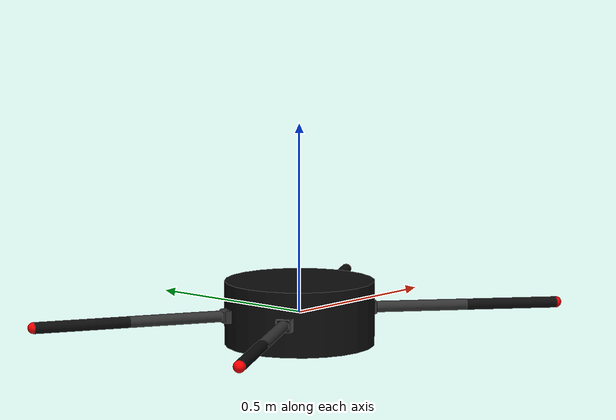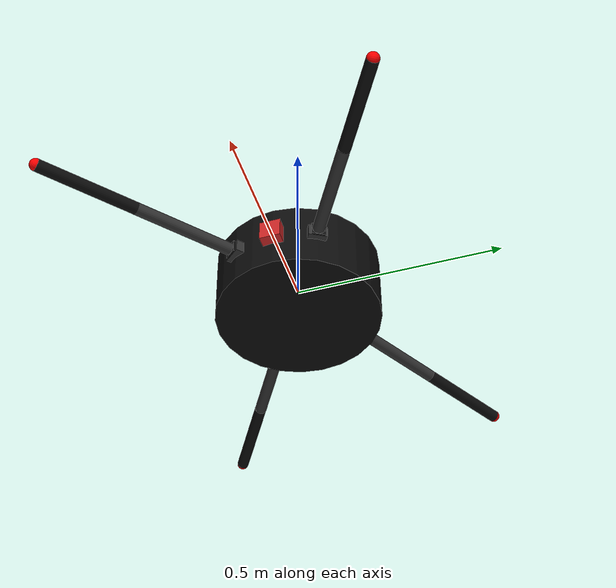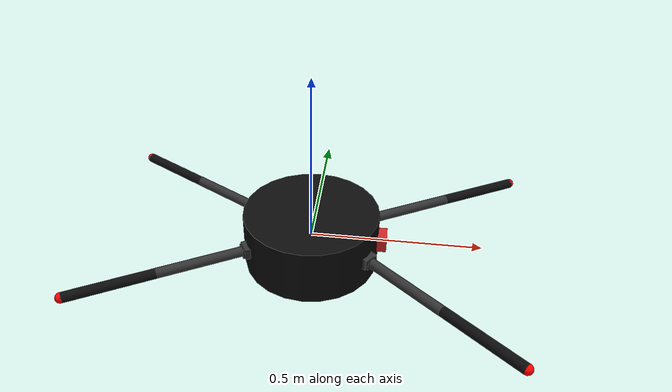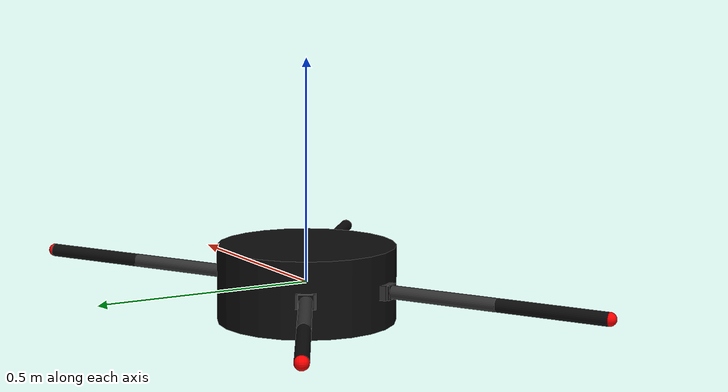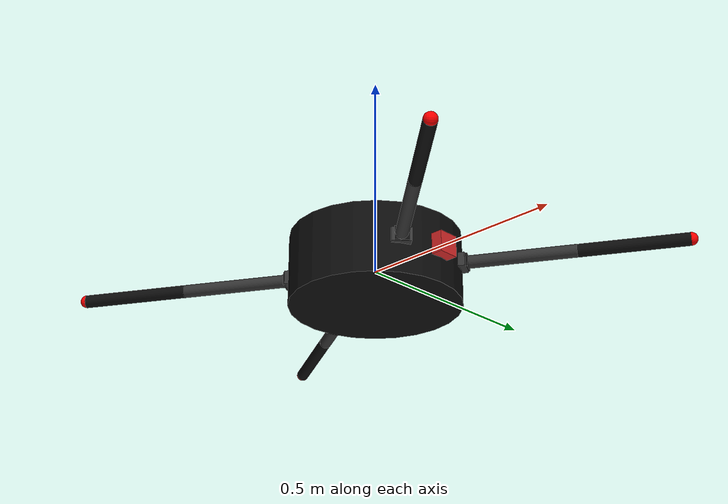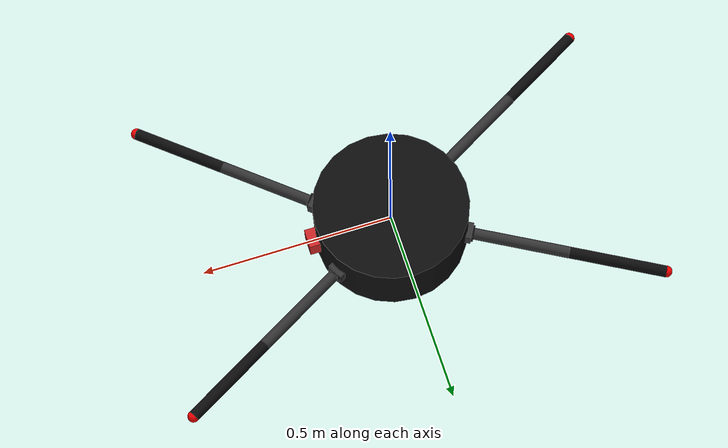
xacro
<?xml version="1.0" encoding="utf-8"?>
<!-- |    This document was autogenerated by xacro from ardent_quad.xacro              | -->
<!-- |    EDITING THIS FILE BY HAND IS NOT RECOMMENDED                                 | -->
<robot name="ardent" xmlns:xacro="http://www.ros.org/wiki/xacro">
  <!-- Link-->
  <joint name="camera_joint" type="fixed">
    <axis xyz="0 1 0"/>
    <origin rpy="0 0 0" xyz="0.2 0 0"/>
    <parent link="body"/>
    <child link="camera_link"/>
  </joint>
  <!-- Camera -->
  <link name="camera_link">
    <collision>
      <origin rpy="0 0 0" xyz="0 0 0"/>
      <geometry>
        <box size="0.05 0.05 0.05"/>
      </geometry>
    </collision>
    <visual>
      <origin rpy="0 0 0" xyz="0 0 0"/>
      <geometry>
        <box size="0.05 0.05 0.05"/>
      </geometry>
      <material name="red"/>
    </visual>
    <inertial>
      <mass value="1e-5"/>
      <origin rpy="0 0 0" xyz="0 0 0"/>
      <inertia ixx="1e-6" ixy="0" ixz="0" iyy="1e-6" iyz="0" izz="1e-6"/>
    </inertial>
  </link>
  <!-- generate an optical frame http://www.ros.org/reps/rep-0103.html#suffix-frames
        so that ros and opencv can operate on the camera frame correctly -->
  <joint name="camera_optical_joint" type="fixed">
    <!-- these values have to be these values otherwise the gazebo camera image
            won't be aligned properly with the frame it is supposedly originating from -->
    <origin rpy="-1.57079632679 0 -1.57079632679" xyz="0 0 0"/>
    <parent link="camera_link"/>
    <child link="camera_link_optical"/>
  </joint>
  <link name="camera_link_optical">
    </link>
  <!-- camera -->
  <gazebo reference="camera_link">
    <sensor name="camera1" type="camera">
      <update_rate>30.0</update_rate>
      <camera name="head">
        <horizontal_fov>1.3962634</horizontal_fov>
        <image>
          <width>800</width>
          <height>800</height>
          <format>R8G8B8</format>
        </image>
        <clip>
          <near>0.02</near>
          <far>300</far>
        </clip>
        <noise>
          <type>gaussian</type>
          <!-- Noise is sampled independently per pixel on each frame.
                That pixel's noise value is added to each of its color
                channels, which at that point lie in the range [0,1]. -->
          <mean>0.0</mean>
          <stddev>0.007</stddev>
        </noise>
      </camera>
      <!-- Depth Plugin -->
      <plugin filename="libgazebo_ros_camera.so" name="camera_controller">
        <alwaysOn>true</alwaysOn>
        <updateRate>0.0</updateRate>
        <cameraName>rrbot/camera1</cameraName>
        <imageTopicName>image_raw</imageTopicName>
        <cameraInfoTopicName>camera_info</cameraInfoTopicName>
        <frameName>camera_link_optical</frameName>
        <!-- setting hackBaseline to anything but 0.0 will cause a misalignment
                between the gazebo sensor image and the frame it is supposed to
                be attached to -->
        <hackBaseline>0.0</hackBaseline>
        <distortionK1>0.0</distortionK1>
        <distortionK2>0.0</distortionK2>
        <distortionK3>0.0</distortionK3>
        <distortionT1>0.0</distortionT1>
        <distortionT2>0.0</distortionT2>
        <CxPrime>0</CxPrime>
        <Cx>0.0</Cx>
        <Cy>0.0</Cy>
        <focalLength>0.0</focalLength>
      </plugin>
    </sensor>
  </gazebo>
  <!-- for more info visit: http://wiki.ros.org/urdf/Tutorials -->
  <link name="base_link"/>
  <joint name="j_ardent_attachment" type="fixed">
    <parent link="base_link"/>
    <child link="body"/>
    <origin rpy="0 0 0" xyz="0 0 0"/>
  </joint>
  <link name="body">
    <inertial>
      <origin xyz="0 0 0"/>
      <mass value="6.8"/>
      <inertia ixx="3.1081800" ixy="-0.25460189" ixz="2.0318174" iyy="6.3787776" iyz="0.16417863" izz="5.3316425"/>
    </inertial>
    <visual>
      <!--origin xyz="-0.0235 0 -0.03525" rpy="0 0 0" /-->
      <origin rpy="0 0 0" xyz="0 0 0"/>
      <geometry>
        <cylinder length="0.17" radius="0.2"/>
        <!--box size="0.102 0.109 0.106" /-->
      </geometry>
      <material name="Orange">
        <color rgba="12 12 12 1.0"/>
      </material>
    </visual>
    <collision>
      <origin rpy="0 0 0" xyz="0 0 0"/>
      <geometry>
        <cylinder length="0.17" radius="0.2"/>
      </geometry>
    </collision>
  </link>
  <gazebo>
    <plugin filename="libgazebo_ros_p3d.so" name="p3d_base_controller">
      <alwaysOn>true</alwaysOn>
      <updateRate>50.0</updateRate>
      <bodyName>body</bodyName>
      <topicName>odom</topicName>
      <gaussianNoise>0.01</gaussianNoise>
      <frameNamespace>world</frameNamespace>
      <xyzOffsets> 0 0 0 </xyzOffsets>
      <rpyOffsets>0 0 0 </rpyOffsets>
    </plugin>
  </gazebo>
  <plugin filename="libgazebo_ros_imu.so" name="gazebo_ros_imu_plugin">
    <alwaysOn>true</alwaysOn>
    <bodyName>body</bodyName>
    <topicName>imu/data</topicName>
    <serviceName>imu/service</serviceName>
    <gaussianNoise>0.0</gaussianNoise>
    <updateRate>800.0</updateRate>
  </plugin>
  <link name="coxa_1">
    <inertial>
      <origin rpy="0 0 0" xyz="0 0 0"/>
      <mass value="0.024357719"/>
      <inertia ixx="0.0051411124" ixy="-0.00057530255" ixz="-0.000024729049" iyy="0.0081915737" iyz="-0.000019223094" izz="0.0011379812"/>
    </inertial>
    <visual>
      <origin rpy="0 0 0" xyz="0 0 0"/>
      <geometry>
        <box size="0.022 0.045 0.0325"/>
      </geometry>
      <material name="Grey">
        <color rgba="0.20 0.20 0.20 1.0"/>
      </material>
    </visual>
    <collision>
      <origin rpy="0 0 0" xyz="0 0 0"/>
      <geometry>
        <box size="0.022 0.045 0.0325"/>
      </geometry>
    </collision>
  </link>
  <link name="c2_1">
    <inertial>
      <origin rpy="0 0 0" xyz="0 0 0"/>
      <mass value="0.024357719"/>
      <inertia ixx="0.0051411124" ixy="-0.00057530255" ixz="-0.000024729049" iyy="0.0081915737" iyz="-0.000019223094" izz="0.0011379812"/>
    </inertial>
    <visual>
      <origin rpy="0 0 0" xyz="0 0 0"/>
      <geometry>
        <box size="0.005 0.0325 0.0325"/>
      </geometry>
      <material name="Orange">
        <color rgba="12 12 12 1.0"/>
      </material>
    </visual>
    <collision>
      <origin rpy="0 0 0" xyz="0 0 0"/>
      <geometry>
        <box size="0.005 0.0325 0.0325"/>
      </geometry>
    </collision>
  </link>
  <link name="femur_1">
    <inertial>
      <origin rpy="0 0 0" xyz="1 0 0"/>
      <mass value="0.0286"/>
      <inertia ixx="0.00059" ixy="-0.0" ixz="-0.0" iyy="0.0" iyz="-0.0" izz="0.00059"/>
    </inertial>
    <visual>
      <origin rpy="0 1.57 0" xyz="0.125 0 0"/>
      <geometry>
        <cylinder length="0.25" radius="0.015"/>
      </geometry>
      <material name="Grey">
        <color rgba="0.20 0.20 0.20 1.0"/>
      </material>
    </visual>
    <collision>
      <origin rpy="0 1.57 0" xyz="0.125 0 0"/>
      <geometry>
        <cylinder length="0.25" radius="0.015"/>
      </geometry>
    </collision>
  </link>
  <link name="tibia_1">
    <inertial>
      <origin rpy="0 0 0" xyz="0 0 0"/>
      <mass value="0.0286"/>
      <!-- g/mm^2 -->
      <inertia ixx="0.00059" ixy="-0.0" ixz="-0.0" iyy="0.0" iyz="-0.0" izz="0.00059"/>
    </inertial>
    <visual>
      <origin rpy="1.57 0 1.57" xyz="0.125 0 0"/>
      <geometry>
        <cylinder length="0.25" radius="0.015"/>
      </geometry>
      <material name="Orange">
        <color rgba="12 12 12 1.0"/>
      </material>
    </visual>
    <collision>
      <origin rpy="1.57 0 1.57" xyz="0.125 0 0"/>
      <geometry>
        <cylinder length="0.25" radius="0.015"/>
      </geometry>
    </collision>
  </link>
  <link name="contact_sensor_1">
    <inertial>
      <origin rpy="0 0 0" xyz="0 0 0"/>
      <mass value="0.005"/>
      <inertia ixx="1.28e-06" ixy="-0.0" ixz="-0.0" iyy="1.28e-06" iyz="-0.0" izz="1.28e-06"/>
    </inertial>
    <visual>
      <origin rpy="0 0 0" xyz="0 0 0"/>
      <geometry>
        <sphere radius="0.015"/>
      </geometry>
      <material name="Black">
        <color rgba="1.0 0 0 0"/>
      </material>
    </visual>
    <collision>
      <origin rpy="0.0 0 0.0" xyz="0.0 0 0"/>
      <geometry>
        <sphere radius="0.015"/>
      </geometry>
    </collision>
  </link>
  <!-- Joint Definitions -->
  <joint name="j_coxa_1" type="revolute">
    <parent link="body"/>
    <child link="coxa_1"/>
    <origin rpy="0 0 5.576" xyz="0.175 -0.1  0.001116"/>
    <axis xyz="0 0 1"/>
    <limit effort="30" lower="-3.14" upper="3.14" velocity="0.5"/>
  </joint>
  <joint name="j_c2_1" type="fixed">
    <parent link="coxa_1"/>
    <child link="c2_1"/>
    <origin rpy="0 0 0" xyz="0.0135 0 0"/>
    <limit effort="30" lower="-3.14" upper="3.14" velocity="0.5"/>
  </joint>
  <joint name="j_femur_1" type="revolute">
    <parent link="c2_1"/>
    <child link="femur_1"/>
    <origin rpy=" 1.57 0 0" xyz="0 0 0"/>
    <axis xyz="0 0 1"/>
    <limit effort="30" lower="-3.14" upper="3.14" velocity="0.5"/>
  </joint>
  <joint name="j_tibia_1" type="revolute">
    <parent link="femur_1"/>
    <child link="tibia_1"/>
    <origin rpy="0 0 0" xyz="0.25 0 0"/>
    <axis xyz="0 0 1"/>
    <limit effort="30" lower="-3.14" upper="3.14" velocity="0.5"/>
  </joint>
  <joint name="j_contact_sensor_1" type="fixed">
    <parent link="tibia_1"/>
    <child link="contact_sensor_1"/>
    <origin rpy="0 0 0" xyz="0.25 0 0"/>
  </joint>
  <!-- Force/Contact Sensor -->
  <!-- This should be added later to provide the force sensor feeback to the rest of the robot -->
  <gazebo reference="contact_sensor_1">
    <sensor name="contact_sensor_1" type="contact">
      <always_on>true</always_on>
      <update_rate>30</update_rate>
      <contact>
        <collision>contact_sensor_1_link_collision</collision>
      </contact>
      <plugin filename="libgazebo_ros_bumper.so" name="bumper0_plugin">
        <bumperTopicName>leg_1/contact_sensor_state</bumperTopicName>
        <frameName>contact_sensor_1</frameName>
      </plugin>
    </sensor>
  </gazebo>
  <!-- Transmissions -->
  <transmission name="t_coxa_1">
    <type>transmission_interface/SimpleTransmission</type>
    <joint name="j_coxa_1">
      <hardwareInterface>hardware_interface/EffortJointInterface</hardwareInterface>
    </joint>
    <actuator name="j_coxa_1">
      <hardwareInterface>hardware_interface/EffortJointInterface</hardwareInterface>
      <mechanicalReduction>1</mechanicalReduction>
    </actuator>
  </transmission>
  <transmission name="t_femur_1">
    <type>transmission_interface/SimpleTransmission</type>
    <joint name="j_femur_1">
      <hardwareInterface>hardware_interface/EffortJointInterface</hardwareInterface>
    </joint>
    <actuator name="j_femur_1">
      <hardwareInterface>hardware_interface/EffortJointInterface</hardwareInterface>
      <mechanicalReduction>1</mechanicalReduction>
    </actuator>
  </transmission>
  <transmission name="t_tibia_1">
    <type>transmission_interface/SimpleTransmission</type>
    <joint name="j_tibia_1">
      <hardwareInterface>hardware_interface/EffortJointInterface</hardwareInterface>
    </joint>
    <actuator name="j_tibia_1">
      <hardwareInterface>hardware_interface/EffortJointInterface</hardwareInterface>
      <mechanicalReduction>1</mechanicalReduction>
    </actuator>
  </transmission>
  <gazebo reference="body">
    <material>Gazebo/Orange</material>
  </gazebo>
  <gazebo reference="coxa_1">
    <material>Gazebo/Black</material>
  </gazebo>
  <gazebo reference="c2_1">
    <material>Gazebo/Orange</material>
  </gazebo>
  <gazebo reference="femur_1">
    <material>Gazebo/Black</material>
  </gazebo>
  <gazebo reference="tibia_1">
    <material>Gazebo/Orange</material>
  </gazebo>
  <gazebo reference="contact_sensor_1">
    <material>Gazebo/Black</material>
  </gazebo>
  <link name="coxa_2">
    <inertial>
      <origin rpy="0 0 0" xyz="0 0 0"/>
      <mass value="0.024357719"/>
      <inertia ixx="0.0051411124" ixy="-0.00057530255" ixz="-0.000024729049" iyy="0.0081915737" iyz="-0.000019223094" izz="0.0011379812"/>
    </inertial>
    <visual>
      <origin rpy="0 0 0" xyz="0 0 0"/>
      <geometry>
        <box size="0.022 0.045 0.0325"/>
      </geometry>
      <material name="Grey">
        <color rgba="0.20 0.20 0.20 1.0"/>
      </material>
    </visual>
    <collision>
      <origin rpy="0 0 0" xyz="0 0 0"/>
      <geometry>
        <box size="0.022 0.045 0.0325"/>
      </geometry>
    </collision>
  </link>
  <link name="c2_2">
    <inertial>
      <origin rpy="0 0 0" xyz="0 0 0"/>
      <mass value="0.024357719"/>
      <inertia ixx="0.0051411124" ixy="-0.00057530255" ixz="-0.000024729049" iyy="0.0081915737" iyz="-0.000019223094" izz="0.0011379812"/>
    </inertial>
    <visual>
      <origin rpy="0 0 0" xyz="0 0 0"/>
      <geometry>
        <box size="0.005 0.0325 0.0325"/>
      </geometry>
      <material name="Orange">
        <color rgba="12 12 12 1.0"/>
      </material>
    </visual>
    <collision>
      <origin rpy="0 0 0" xyz="0 0 0"/>
      <geometry>
        <box size="0.005 0.0325 0.0325"/>
      </geometry>
    </collision>
  </link>
  <link name="femur_2">
    <inertial>
      <origin rpy="0 0 0" xyz="1 0 0"/>
      <mass value="0.0286"/>
      <inertia ixx="0.00059" ixy="-0.0" ixz="-0.0" iyy="0.0" iyz="-0.0" izz="0.00059"/>
    </inertial>
    <visual>
      <origin rpy="0 1.57 0" xyz="0.125 0 0"/>
      <geometry>
        <cylinder length="0.25" radius="0.015"/>
      </geometry>
      <material name="Grey">
        <color rgba="0.20 0.20 0.20 1.0"/>
      </material>
    </visual>
    <collision>
      <origin rpy="0 1.57 0" xyz="0.125 0 0"/>
      <geometry>
        <cylinder length="0.25" radius="0.015"/>
      </geometry>
    </collision>
  </link>
  <link name="tibia_2">
    <inertial>
      <origin rpy="0 0 0" xyz="0 0 0"/>
      <mass value="0.0286"/>
      <!-- g/mm^2 -->
      <inertia ixx="0.00059" ixy="-0.0" ixz="-0.0" iyy="0.0" iyz="-0.0" izz="0.00059"/>
    </inertial>
    <visual>
      <origin rpy="1.57 0 1.57" xyz="0.125 0 0"/>
      <geometry>
        <cylinder length="0.25" radius="0.015"/>
      </geometry>
      <material name="Orange">
        <color rgba="12 12 12 1.0"/>
      </material>
    </visual>
    <collision>
      <origin rpy="1.57 0 1.57" xyz="0.125 0 0"/>
      <geometry>
        <cylinder length="0.25" radius="0.015"/>
      </geometry>
    </collision>
  </link>
  <link name="contact_sensor_2">
    <inertial>
      <origin rpy="0 0 0" xyz="0 0 0"/>
      <mass value="0.005"/>
      <inertia ixx="1.28e-06" ixy="-0.0" ixz="-0.0" iyy="1.28e-06" iyz="-0.0" izz="1.28e-06"/>
    </inertial>
    <visual>
      <origin rpy="0 0 0" xyz="0 0 0"/>
      <geometry>
        <sphere radius="0.015"/>
      </geometry>
      <material name="Black">
        <color rgba="1.0 0 0 0"/>
      </material>
    </visual>
    <collision>
      <origin rpy="0.0 0 0.0" xyz="0.0 0 0"/>
      <geometry>
        <sphere radius="0.015"/>
      </geometry>
    </collision>
  </link>
  <!-- Joint Definitions -->
  <joint name="j_coxa_2" type="revolute">
    <parent link="body"/>
    <child link="coxa_2"/>
    <origin rpy="0 0 -2.62" xyz="-0.175 -0.1  0.001116"/>
    <axis xyz="0 0 1"/>
    <limit effort="30" lower="-3.14" upper="3.14" velocity="0.5"/>
  </joint>
  <joint name="j_c2_2" type="fixed">
    <parent link="coxa_2"/>
    <child link="c2_2"/>
    <origin rpy="0 0 0" xyz="0.0135 0 0"/>
    <limit effort="30" lower="-3.14" upper="3.14" velocity="0.5"/>
  </joint>
  <joint name="j_femur_2" type="revolute">
    <parent link="c2_2"/>
    <child link="femur_2"/>
    <origin rpy=" 1.57 0 0" xyz="0 0 0"/>
    <axis xyz="0 0 1"/>
    <limit effort="30" lower="-3.14" upper="3.14" velocity="0.5"/>
  </joint>
  <joint name="j_tibia_2" type="revolute">
    <parent link="femur_2"/>
    <child link="tibia_2"/>
    <origin rpy="0 0 0" xyz="0.25 0 0"/>
    <axis xyz="0 0 1"/>
    <limit effort="30" lower="-3.14" upper="3.14" velocity="0.5"/>
  </joint>
  <joint name="j_contact_sensor_2" type="fixed">
    <parent link="tibia_2"/>
    <child link="contact_sensor_2"/>
    <origin rpy="0 0 0" xyz="0.25 0 0"/>
  </joint>
  <!-- Force/Contact Sensor -->
  <!-- This should be added later to provide the force sensor feeback to the rest of the robot -->
  <gazebo reference="contact_sensor_2">
    <sensor name="contact_sensor_2" type="contact">
      <always_on>true</always_on>
      <update_rate>30</update_rate>
      <contact>
        <collision>contact_sensor_2_link_collision</collision>
      </contact>
      <plugin filename="libgazebo_ros_bumper.so" name="bumper0_plugin">
        <bumperTopicName>leg_2/contact_sensor_state</bumperTopicName>
        <frameName>contact_sensor_2</frameName>
      </plugin>
    </sensor>
  </gazebo>
  <!-- Transmissions -->
  <transmission name="t_coxa_2">
    <type>transmission_interface/SimpleTransmission</type>
    <joint name="j_coxa_2">
      <hardwareInterface>hardware_interface/EffortJointInterface</hardwareInterface>
    </joint>
    <actuator name="j_coxa_2">
      <hardwareInterface>hardware_interface/EffortJointInterface</hardwareInterface>
      <mechanicalReduction>1</mechanicalReduction>
    </actuator>
  </transmission>
  <transmission name="t_femur_2">
    <type>transmission_interface/SimpleTransmission</type>
    <joint name="j_femur_2">
      <hardwareInterface>hardware_interface/EffortJointInterface</hardwareInterface>
    </joint>
    <actuator name="j_femur_2">
      <hardwareInterface>hardware_interface/EffortJointInterface</hardwareInterface>
      <mechanicalReduction>1</mechanicalReduction>
    </actuator>
  </transmission>
  <transmission name="t_tibia_2">
    <type>transmission_interface/SimpleTransmission</type>
    <joint name="j_tibia_2">
      <hardwareInterface>hardware_interface/EffortJointInterface</hardwareInterface>
    </joint>
    <actuator name="j_tibia_2">
      <hardwareInterface>hardware_interface/EffortJointInterface</hardwareInterface>
      <mechanicalReduction>1</mechanicalReduction>
    </actuator>
  </transmission>
  <gazebo reference="body">
    <material>Gazebo/Orange</material>
  </gazebo>
  <gazebo reference="coxa_2">
    <material>Gazebo/Black</material>
  </gazebo>
  <gazebo reference="c2_2">
    <material>Gazebo/Orange</material>
  </gazebo>
  <gazebo reference="femur_2">
    <material>Gazebo/Black</material>
  </gazebo>
  <gazebo reference="tibia_2">
    <material>Gazebo/Orange</material>
  </gazebo>
  <gazebo reference="contact_sensor_2">
    <material>Gazebo/Black</material>
  </gazebo>
  <link name="coxa_3">
    <inertial>
      <origin rpy="0 0 0" xyz="0 0 0"/>
      <mass value="0.024357719"/>
      <inertia ixx="0.0051411124" ixy="-0.00057530255" ixz="-0.000024729049" iyy="0.0081915737" iyz="-0.000019223094" izz="0.0011379812"/>
    </inertial>
    <visual>
      <origin rpy="0 0 0" xyz="0 0 0"/>
      <geometry>
        <box size="0.022 0.045 0.0325"/>
      </geometry>
      <material name="Grey">
        <color rgba="0.20 0.20 0.20 1.0"/>
      </material>
    </visual>
    <collision>
      <origin rpy="0 0 0" xyz="0 0 0"/>
      <geometry>
        <box size="0.022 0.045 0.0325"/>
      </geometry>
    </collision>
  </link>
  <link name="c2_3">
    <inertial>
      <origin rpy="0 0 0" xyz="0 0 0"/>
      <mass value="0.024357719"/>
      <inertia ixx="0.0051411124" ixy="-0.00057530255" ixz="-0.000024729049" iyy="0.0081915737" iyz="-0.000019223094" izz="0.0011379812"/>
    </inertial>
    <visual>
      <origin rpy="0 0 0" xyz="0 0 0"/>
      <geometry>
        <box size="0.005 0.0325 0.0325"/>
      </geometry>
      <material name="Orange">
        <color rgba="12 12 12 1.0"/>
      </material>
    </visual>
    <collision>
      <origin rpy="0 0 0" xyz="0 0 0"/>
      <geometry>
        <box size="0.005 0.0325 0.0325"/>
      </geometry>
    </collision>
  </link>
  <link name="femur_3">
    <inertial>
      <origin rpy="0 0 0" xyz="1 0 0"/>
      <mass value="0.0286"/>
      <inertia ixx="0.00059" ixy="-0.0" ixz="-0.0" iyy="0.0" iyz="-0.0" izz="0.00059"/>
    </inertial>
    <visual>
      <origin rpy="0 1.57 0" xyz="0.125 0 0"/>
      <geometry>
        <cylinder length="0.25" radius="0.015"/>
      </geometry>
      <material name="Grey">
        <color rgba="0.20 0.20 0.20 1.0"/>
      </material>
    </visual>
    <collision>
      <origin rpy="0 1.57 0" xyz="0.125 0 0"/>
      <geometry>
        <cylinder length="0.25" radius="0.015"/>
      </geometry>
    </collision>
  </link>
  <link name="tibia_3">
    <inertial>
      <origin rpy="0 0 0" xyz="0 0 0"/>
      <mass value="0.0286"/>
      <!-- g/mm^2 -->
      <inertia ixx="0.00059" ixy="-0.0" ixz="-0.0" iyy="0.0" iyz="-0.0" izz="0.00059"/>
    </inertial>
    <visual>
      <origin rpy="1.57 0 1.57" xyz="0.125 0 0"/>
      <geometry>
        <cylinder length="0.25" radius="0.015"/>
      </geometry>
      <material name="Orange">
        <color rgba="12 12 12 1.0"/>
      </material>
    </visual>
    <collision>
      <origin rpy="1.57 0 1.57" xyz="0.125 0 0"/>
      <geometry>
        <cylinder length="0.25" radius="0.015"/>
      </geometry>
    </collision>
  </link>
  <link name="contact_sensor_3">
    <inertial>
      <origin rpy="0 0 0" xyz="0 0 0"/>
      <mass value="0.005"/>
      <inertia ixx="1.28e-06" ixy="-0.0" ixz="-0.0" iyy="1.28e-06" iyz="-0.0" izz="1.28e-06"/>
    </inertial>
    <visual>
      <origin rpy="0 0 0" xyz="0 0 0"/>
      <geometry>
        <sphere radius="0.015"/>
      </geometry>
      <material name="Black">
        <color rgba="1.0 0 0 0"/>
      </material>
    </visual>
    <collision>
      <origin rpy="0.0 0 0.0" xyz="0.0 0 0"/>
      <geometry>
        <sphere radius="0.015"/>
      </geometry>
    </collision>
  </link>
  <!-- Joint Definitions -->
  <joint name="j_coxa_3" type="revolute">
    <parent link="body"/>
    <child link="coxa_3"/>
    <origin rpy="0 0 0.52" xyz="0.175 0.1  0.001116"/>
    <axis xyz="0 0 1"/>
    <limit effort="30" lower="-3.14" upper="3.14" velocity="0.5"/>
  </joint>
  <joint name="j_c2_3" type="fixed">
    <parent link="coxa_3"/>
    <child link="c2_3"/>
    <origin rpy="0 0 0" xyz="0.0135 0 0"/>
    <limit effort="30" lower="-3.14" upper="3.14" velocity="0.5"/>
  </joint>
  <joint name="j_femur_3" type="revolute">
    <parent link="c2_3"/>
    <child link="femur_3"/>
    <origin rpy=" 1.57 0 0" xyz="0 0 0"/>
    <axis xyz="0 0 1"/>
    <limit effort="30" lower="-3.14" upper="3.14" velocity="0.5"/>
  </joint>
  <joint name="j_tibia_3" type="revolute">
    <parent link="femur_3"/>
    <child link="tibia_3"/>
    <origin rpy="0 0 0" xyz="0.25 0 0"/>
    <axis xyz="0 0 1"/>
    <limit effort="30" lower="-3.14" upper="3.14" velocity="0.5"/>
  </joint>
  <joint name="j_contact_sensor_3" type="fixed">
    <parent link="tibia_3"/>
    <child link="contact_sensor_3"/>
    <origin rpy="0 0 0" xyz="0.25 0 0"/>
  </joint>
  <!-- Force/Contact Sensor -->
  <!-- This should be added later to provide the force sensor feeback to the rest of the robot -->
  <gazebo reference="contact_sensor_3">
    <sensor name="contact_sensor_3" type="contact">
      <always_on>true</always_on>
      <update_rate>30</update_rate>
      <contact>
        <collision>contact_sensor_3_link_collision</collision>
      </contact>
      <plugin filename="libgazebo_ros_bumper.so" name="bumper0_plugin">
        <bumperTopicName>leg_3/contact_sensor_state</bumperTopicName>
        <frameName>contact_sensor_3</frameName>
      </plugin>
    </sensor>
  </gazebo>
  <!-- Transmissions -->
  <transmission name="t_coxa_3">
    <type>transmission_interface/SimpleTransmission</type>
    <joint name="j_coxa_3">
      <hardwareInterface>hardware_interface/EffortJointInterface</hardwareInterface>
    </joint>
    <actuator name="j_coxa_3">
      <hardwareInterface>hardware_interface/EffortJointInterface</hardwareInterface>
      <mechanicalReduction>1</mechanicalReduction>
    </actuator>
  </transmission>
  <transmission name="t_femur_3">
    <type>transmission_interface/SimpleTransmission</type>
    <joint name="j_femur_3">
      <hardwareInterface>hardware_interface/EffortJointInterface</hardwareInterface>
    </joint>
    <actuator name="j_femur_3">
      <hardwareInterface>hardware_interface/EffortJointInterface</hardwareInterface>
      <mechanicalReduction>1</mechanicalReduction>
    </actuator>
  </transmission>
  <transmission name="t_tibia_3">
    <type>transmission_interface/SimpleTransmission</type>
    <joint name="j_tibia_3">
      <hardwareInterface>hardware_interface/EffortJointInterface</hardwareInterface>
    </joint>
    <actuator name="j_tibia_3">
      <hardwareInterface>hardware_interface/EffortJointInterface</hardwareInterface>
      <mechanicalReduction>1</mechanicalReduction>
    </actuator>
  </transmission>
  <gazebo reference="body">
    <material>Gazebo/Orange</material>
  </gazebo>
  <gazebo reference="coxa_3">
    <material>Gazebo/Black</material>
  </gazebo>
  <gazebo reference="c2_3">
    <material>Gazebo/Orange</material>
  </gazebo>
  <gazebo reference="femur_3">
    <material>Gazebo/Black</material>
  </gazebo>
  <gazebo reference="tibia_3">
    <material>Gazebo/Orange</material>
  </gazebo>
  <gazebo reference="contact_sensor_3">
    <material>Gazebo/Black</material>
  </gazebo>
  <link name="coxa_4">
    <inertial>
      <origin rpy="0 0 0" xyz="0 0 0"/>
      <mass value="0.024357719"/>
      <inertia ixx="0.0051411124" ixy="-0.00057530255" ixz="-0.000024729049" iyy="0.0081915737" iyz="-0.000019223094" izz="0.0011379812"/>
    </inertial>
    <visual>
      <origin rpy="0 0 0" xyz="0 0 0"/>
      <geometry>
        <box size="0.022 0.045 0.0325"/>
      </geometry>
      <material name="Grey">
        <color rgba="0.20 0.20 0.20 1.0"/>
      </material>
    </visual>
    <collision>
      <origin rpy="0 0 0" xyz="0 0 0"/>
      <geometry>
        <box size="0.022 0.045 0.0325"/>
      </geometry>
    </collision>
  </link>
  <link name="c2_4">
    <inertial>
      <origin rpy="0 0 0" xyz="0 0 0"/>
      <mass value="0.024357719"/>
      <inertia ixx="0.0051411124" ixy="-0.00057530255" ixz="-0.000024729049" iyy="0.0081915737" iyz="-0.000019223094" izz="0.0011379812"/>
    </inertial>
    <visual>
      <origin rpy="0 0 0" xyz="0 0 0"/>
      <geometry>
        <box size="0.005 0.0325 0.0325"/>
      </geometry>
      <material name="Orange">
        <color rgba="12 12 12 1.0"/>
      </material>
    </visual>
    <collision>
      <origin rpy="0 0 0" xyz="0 0 0"/>
      <geometry>
        <box size="0.005 0.0325 0.0325"/>
      </geometry>
    </collision>
  </link>
  <link name="femur_4">
    <inertial>
      <origin rpy="0 0 0" xyz="1 0 0"/>
      <mass value="0.0286"/>
      <inertia ixx="0.00059" ixy="-0.0" ixz="-0.0" iyy="0.0" iyz="-0.0" izz="0.00059"/>
    </inertial>
    <visual>
      <origin rpy="0 1.57 0" xyz="0.125 0 0"/>
      <geometry>
        <cylinder length="0.25" radius="0.015"/>
      </geometry>
      <material name="Grey">
        <color rgba="0.20 0.20 0.20 1.0"/>
      </material>
    </visual>
    <collision>
      <origin rpy="0 1.57 0" xyz="0.125 0 0"/>
      <geometry>
        <cylinder length="0.25" radius="0.015"/>
      </geometry>
    </collision>
  </link>
  <link name="tibia_4">
    <inertial>
      <origin rpy="0 0 0" xyz="0 0 0"/>
      <mass value="0.0286"/>
      <!-- g/mm^2 -->
      <inertia ixx="0.00059" ixy="-0.0" ixz="-0.0" iyy="0.0" iyz="-0.0" izz="0.00059"/>
    </inertial>
    <visual>
      <origin rpy="1.57 0 1.57" xyz="0.125 0 0"/>
      <geometry>
        <cylinder length="0.25" radius="0.015"/>
      </geometry>
      <material name="Orange">
        <color rgba="12 12 12 1.0"/>
      </material>
    </visual>
    <collision>
      <origin rpy="1.57 0 1.57" xyz="0.125 0 0"/>
      <geometry>
        <cylinder length="0.25" radius="0.015"/>
      </geometry>
    </collision>
  </link>
  <link name="contact_sensor_4">
    <inertial>
      <origin rpy="0 0 0" xyz="0 0 0"/>
      <mass value="0.005"/>
      <inertia ixx="1.28e-06" ixy="-0.0" ixz="-0.0" iyy="1.28e-06" iyz="-0.0" izz="1.28e-06"/>
    </inertial>
    <visual>
      <origin rpy="0 0 0" xyz="0 0 0"/>
      <geometry>
        <sphere radius="0.015"/>
      </geometry>
      <material name="Black">
        <color rgba="1.0 0 0 0"/>
      </material>
    </visual>
    <collision>
      <origin rpy="0.0 0 0.0" xyz="0.0 0 0"/>
      <geometry>
        <sphere radius="0.015"/>
      </geometry>
    </collision>
  </link>
  <!-- Joint Definitions -->
  <joint name="j_coxa_4" type="revolute">
    <parent link="body"/>
    <child link="coxa_4"/>
    <origin rpy="0 0 2.62" xyz="-0.175 0.1  0.001116"/>
    <axis xyz="0 0 1"/>
    <limit effort="30" lower="-3.14" upper="3.14" velocity="0.5"/>
  </joint>
  <joint name="j_c2_4" type="fixed">
    <parent link="coxa_4"/>
    <child link="c2_4"/>
    <origin rpy="0 0 0" xyz="0.0135 0 0"/>
    <limit effort="30" lower="-3.14" upper="3.14" velocity="0.5"/>
  </joint>
  <joint name="j_femur_4" type="revolute">
    <parent link="c2_4"/>
    <child link="femur_4"/>
    <origin rpy=" 1.57 0 0" xyz="0 0 0"/>
    <axis xyz="0 0 1"/>
    <limit effort="30" lower="-3.14" upper="3.14" velocity="0.5"/>
  </joint>
  <joint name="j_tibia_4" type="revolute">
    <parent link="femur_4"/>
    <child link="tibia_4"/>
    <origin rpy="0 0 0" xyz="0.25 0 0"/>
    <axis xyz="0 0 1"/>
    <limit effort="30" lower="-3.14" upper="3.14" velocity="0.5"/>
  </joint>
  <joint name="j_contact_sensor_4" type="fixed">
    <parent link="tibia_4"/>
    <child link="contact_sensor_4"/>
    <origin rpy="0 0 0" xyz="0.25 0 0"/>
  </joint>
  <!-- Force/Contact Sensor -->
  <!-- This should be added later to provide the force sensor feeback to the rest of the robot -->
  <gazebo reference="contact_sensor_4">
    <sensor name="contact_sensor_4" type="contact">
      <always_on>true</always_on>
      <update_rate>30</update_rate>
      <contact>
        <collision>contact_sensor_4_link_collision</collision>
      </contact>
      <plugin filename="libgazebo_ros_bumper.so" name="bumper0_plugin">
        <bumperTopicName>leg_4/contact_sensor_state</bumperTopicName>
        <frameName>contact_sensor_4</frameName>
      </plugin>
    </sensor>
  </gazebo>
  <!-- Transmissions -->
  <transmission name="t_coxa_4">
    <type>transmission_interface/SimpleTransmission</type>
    <joint name="j_coxa_4">
      <hardwareInterface>hardware_interface/EffortJointInterface</hardwareInterface>
    </joint>
    <actuator name="j_coxa_4">
      <hardwareInterface>hardware_interface/EffortJointInterface</hardwareInterface>
      <mechanicalReduction>1</mechanicalReduction>
    </actuator>
  </transmission>
  <transmission name="t_femur_4">
    <type>transmission_interface/SimpleTransmission</type>
    <joint name="j_femur_4">
      <hardwareInterface>hardware_interface/EffortJointInterface</hardwareInterface>
    </joint>
    <actuator name="j_femur_4">
      <hardwareInterface>hardware_interface/EffortJointInterface</hardwareInterface>
      <mechanicalReduction>1</mechanicalReduction>
    </actuator>
  </transmission>
  <transmission name="t_tibia_4">
    <type>transmission_interface/SimpleTransmission</type>
    <joint name="j_tibia_4">
      <hardwareInterface>hardware_interface/EffortJointInterface</hardwareInterface>
    </joint>
    <actuator name="j_tibia_4">
      <hardwareInterface>hardware_interface/EffortJointInterface</hardwareInterface>
      <mechanicalReduction>1</mechanicalReduction>
    </actuator>
  </transmission>
  <gazebo reference="body">
    <material>Gazebo/Orange</material>
  </gazebo>
  <gazebo reference="coxa_4">
    <material>Gazebo/Black</material>
  </gazebo>
  <gazebo reference="c2_4">
    <material>Gazebo/Orange</material>
  </gazebo>
  <gazebo reference="femur_4">
    <material>Gazebo/Black</material>
  </gazebo>
  <gazebo reference="tibia_4">
    <material>Gazebo/Orange</material>
  </gazebo>
  <gazebo reference="contact_sensor_4">
    <material>Gazebo/Black</material>
  </gazebo>
  <gazebo>
    <plugin filename="libgazebo_ros_control.so" name="gazebo_ros_control">
    </plugin>
  </gazebo>
</robot>
